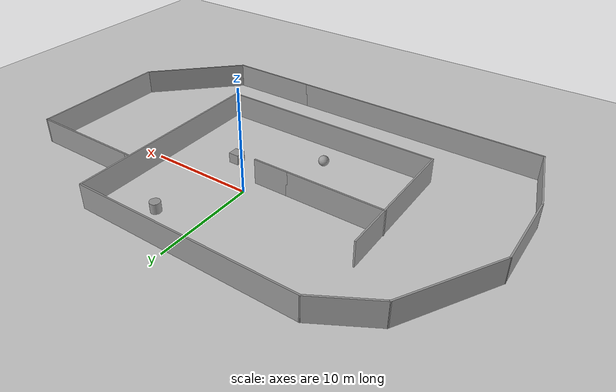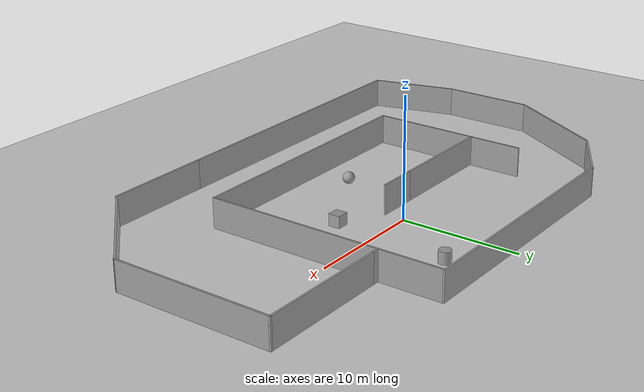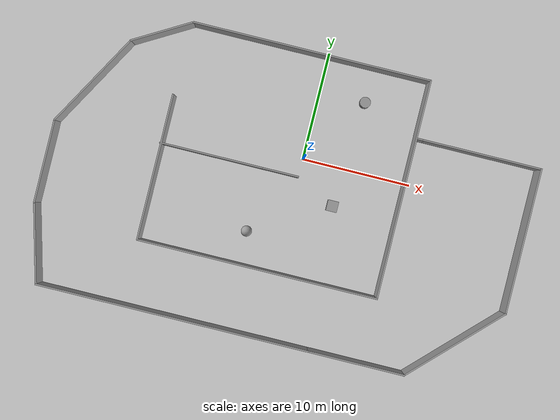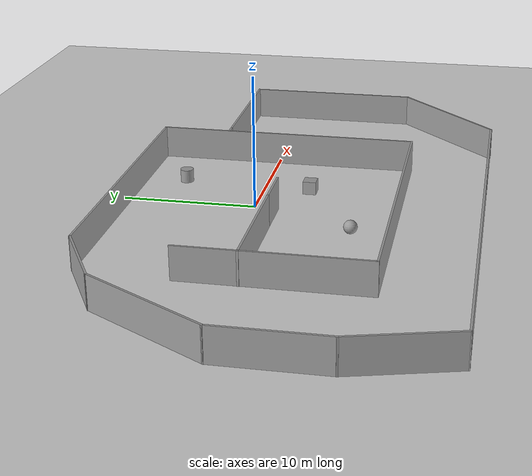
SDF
<sdf version="1.7">
 <world name="default">
  <light name="sun" type="directional">
   <pose>0 0 10 0 -0 0</pose>
   <diffuse>0.8 0.8 0.8 1</diffuse>
   <specular>0.2 0.2 0.2 1</specular>
   <attenuation>
    <range>1000</range>
    <constant>0.9</constant>
    <linear>0.01</linear>
    <quadratic>0.001</quadratic>
   </attenuation>
   <direction>-0.5 0.1 -0.9</direction>
   <spot><inner_angle>0</inner_angle><outer_angle>0</outer_angle><falloff>0</falloff></spot>
  </light>
  <model name="ground_plane">
   <static>1</static>
   <link name="link">
    <collision name="collision">
     <geometry><plane><normal>0 0 1</normal><size>100 100</size></plane></geometry>
     <surface>
      <contact><collide_bitmask>65535</collide_bitmask></contact>
      <friction><ode><mu>100</mu><mu2>50</mu2></ode></friction>
     </surface>
    </collision>
    <visual name="visual">
     <cast_shadows>0</cast_shadows>
     <geometry><plane><normal>0 0 1</normal><size>100 100</size></plane></geometry>
     <material>
      <script><uri>file://media/materials/scripts/gazebo.material</uri><name>Gazebo/Grey</name></script>
     </material>
    </visual>
   </link>
  </model>
  <gravity>0 0 -9.8</gravity>
  <magnetic_field>6e-06 2.3e-05 -4.2e-05</magnetic_field>
  <atmosphere type="adiabatic"/>
  <physics type="ode">
   <max_step_size>0.001</max_step_size>
   <real_time_factor>1</real_time_factor>
   <real_time_update_rate>1000</real_time_update_rate>
  </physics>
  <scene><ambient>0.4 0.4 0.4 1</ambient><background>0.7 0.7 0.7 1</background><shadows>1</shadows></scene>
  <spherical_coordinates>
   <surface_model>EARTH_WGS84</surface_model>
   <latitude_deg>0</latitude_deg>
   <longitude_deg>0</longitude_deg>
   <elevation>0</elevation>
   <heading_deg>0</heading_deg>
  </spherical_coordinates>
  <model name="dd_world">
   <pose>-0.797271 -3.61014 0 0 -0 0</pose>
   <link name="Wall_19">
    <collision name="Wall_19_Collision">
     <geometry><box><size>13.5 0.15 2.5</size></box></geometry>
     <pose>0 0 1.25 0 -0 0</pose>
    </collision>
    <visual name="Wall_19_Visual">
     <pose>0 0 1.25 0 -0 0</pose>
     <geometry><box><size>13.5 0.15 2.5</size></box></geometry>
     <material>
      <script><uri>file://media/materials/scripts/gazebo.material</uri><name>Gazebo/Grey</name></script>
      <ambient>1 1 1 1</ambient>
     </material>
     <meta><layer>0</layer></meta>
    </visual>
    <pose>-11.9344 -0.34574 0 0 -0 -1.5708</pose>
   </link>
   <link name="Wall_20">
    <collision name="Wall_20_Collision">
     <geometry><box><size>22.25 0.15 2.5</size></box></geometry>
     <pose>0 0 1.25 0 -0 0</pose>
    </collision>
    <visual name="Wall_20_Visual">
     <pose>0 0 1.25 0 -0 0</pose>
     <geometry><box><size>22.25 0.15 2.5</size></box></geometry>
     <material>
      <script><uri>file://media/materials/scripts/gazebo.material</uri><name>Gazebo/Grey</name></script>
      <ambient>1 1 1 1</ambient>
     </material>
     <meta><layer>0</layer></meta>
    </visual>
    <pose>-0.884384 -7.02074 0 0 -0 0</pose>
   </link>
   <link name="Wall_21">
    <collision name="Wall_21_Collision">
     <geometry><box><size>20.25 0.15 2.5</size></box></geometry>
     <pose>0 0 1.25 0 -0 0</pose>
    </collision>
    <visual name="Wall_21_Visual">
     <pose>0 0 1.25 0 -0 0</pose>
     <geometry><box><size>20.25 0.15 2.5</size></box></geometry>
     <material>
      <script><uri>file://media/materials/scripts/gazebo.material</uri><name>Gazebo/Grey</name></script>
      <ambient>1 1 1 1</ambient>
     </material>
     <meta><layer>0</layer></meta>
    </visual>
    <pose>10.1656 3.02926 0 0 -0 1.5708</pose>
   </link>
   <link name="Wall_22">
    <collision name="Wall_22_Collision">
     <geometry><box><size>22 0.15 2.5</size></box></geometry>
     <pose>0 0 1.25 0 -0 0</pose>
    </collision>
    <visual name="Wall_22_Visual">
     <pose>0 0 1.25 0 -0 0</pose>
     <geometry><box><size>22 0.15 2.5</size></box></geometry>
     <material>
      <script><uri>file://media/materials/scripts/gazebo.material</uri><name>Gazebo/Grey</name></script>
      <ambient>1 1 1 1</ambient>
     </material>
     <meta><layer>0</layer></meta>
    </visual>
    <pose>-0.759384 13.0793 0 0 -0 3.14159</pose>
   </link>
   <link name="Wall_23">
    <collision name="Wall_23_Collision">
     <geometry><box><size>6 0.15 2.5</size></box></geometry>
     <pose>0 0 1.25 0 -0 0</pose>
    </collision>
    <visual name="Wall_23_Visual">
     <pose>0 0 1.25 0 -0 0</pose>
     <geometry><box><size>6 0.15 2.5</size></box></geometry>
     <material>
      <script><uri>file://media/materials/scripts/gazebo.material</uri><name>Gazebo/Grey</name></script>
      <ambient>1 1 1 1</ambient>
     </material>
     <meta><layer>0</layer></meta>
    </visual>
    <pose>-14.2175 11.6168 0 0 -0 -2.61799</pose>
   </link>
   <link name="Wall_24">
    <collision name="Wall_24_Collision">
     <geometry><box><size>10 0.15 2.5</size></box></geometry>
     <pose>0 0 1.25 0 -0 0</pose>
    </collision>
    <visual name="Wall_24_Visual">
     <pose>0 0 1.25 0 -0 0</pose>
     <geometry><box><size>10 0.15 2.5</size></box></geometry>
     <material>
      <script><uri>file://media/materials/scripts/gazebo.material</uri><name>Gazebo/Grey</name></script>
      <ambient>1 1 1 1</ambient>
     </material>
     <meta><layer>0</layer></meta>
    </visual>
    <pose>-19.2131 5.88908 0 0 -0 -2.0944</pose>
   </link>
   <link name="Wall_25">
    <collision name="Wall_25_Collision">
     <geometry><box><size>7.75 0.15 2.5</size></box></geometry>
     <pose>0 0 1.25 0 -0 0</pose>
    </collision>
    <visual name="Wall_25_Visual">
     <pose>0 0 1.25 0 -0 0</pose>
     <geometry><box><size>7.75 0.15 2.5</size></box></geometry>
     <material>
      <script><uri>file://media/materials/scripts/gazebo.material</uri><name>Gazebo/Grey</name></script>
      <ambient>1 1 1 1</ambient>
     </material>
     <meta><layer>0</layer></meta>
    </visual>
    <pose>-21.6756 -2.17609 0 0 -0 -1.5708</pose>
   </link>
   <link name="Wall_26">
    <collision name="Wall_26_Collision">
     <geometry><box><size>7.5 0.15 2.5</size></box></geometry>
     <pose>0 0 1.25 0 -0 0</pose>
    </collision>
    <visual name="Wall_26_Visual">
     <pose>0 0 1.25 0 -0 0</pose>
     <geometry><box><size>7.5 0.15 2.5</size></box></geometry>
     <material>
      <script><uri>file://media/materials/scripts/gazebo.material</uri><name>Gazebo/Grey</name></script>
      <ambient>1 1 1 1</ambient>
     </material>
     <meta><layer>0</layer></meta>
    </visual>
    <pose>-20.7245 -9.52587 0 0 -0 -1.309</pose>
   </link>
   <link name="Wall_27">
    <collision name="Wall_27_Collision">
     <geometry><box><size>25.25 0.15 2.5</size></box></geometry>
     <pose>0 0 1.25 0 -0 0</pose>
    </collision>
    <visual name="Wall_27_Visual">
     <pose>0 0 1.25 0 -0 0</pose>
     <geometry><box><size>25.25 0.15 2.5</size></box></geometry>
     <material>
      <script><uri>file://media/materials/scripts/gazebo.material</uri><name>Gazebo/Grey</name></script>
      <ambient>1 1 1 1</ambient>
     </material>
     <meta><layer>0</layer></meta>
    </visual>
    <pose>-7.22331 -13.0756 0 0 -0 0</pose>
   </link>
   <link name="Wall_28">
    <collision name="Wall_28_Collision">
     <geometry><box><size>9 0.15 2.5</size></box></geometry>
     <pose>0 0 1.25 0 -0 0</pose>
    </collision>
    <visual name="Wall_28_Visual">
     <pose>0 0 1.25 0 -0 0</pose>
     <geometry><box><size>9 0.15 2.5</size></box></geometry>
     <material>
      <script><uri>file://media/materials/scripts/gazebo.material</uri><name>Gazebo/Grey</name></script>
      <ambient>1 1 1 1</ambient>
     </material>
     <meta><layer>0</layer></meta>
    </visual>
    <pose>9.75169 -13.0756 0 0 -0 0</pose>
   </link>
   <link name="Wall_29">
    <collision name="Wall_29_Collision">
     <geometry><box><size>10.75 0.15 2.5</size></box></geometry>
     <pose>0 0 1.25 0 -0 0</pose>
    </collision>
    <visual name="Wall_29_Visual">
     <pose>0 0 1.25 0 -0 0</pose>
     <geometry><box><size>10.75 0.15 2.5</size></box></geometry>
     <material>
      <script><uri>file://media/materials/scripts/gazebo.material</uri><name>Gazebo/Grey</name></script>
      <ambient>1 1 1 1</ambient>
     </material>
     <meta><layer>0</layer></meta>
    </visual>
    <pose>17.9244 -9.32798 0 0 -0 0.785398</pose>
   </link>
   <link name="Wall_30">
    <collision name="Wall_30_Collision">
     <geometry><box><size>13.5 0.15 2.5</size></box></geometry>
     <pose>0 0 1.25 0 -0 0</pose>
    </collision>
    <visual name="Wall_30_Visual">
     <pose>0 0 1.25 0 -0 0</pose>
     <geometry><box><size>13.5 0.15 2.5</size></box></geometry>
     <material>
      <script><uri>file://media/materials/scripts/gazebo.material</uri><name>Gazebo/Grey</name></script>
      <ambient>1 1 1 1</ambient>
     </material>
     <meta><layer>0</layer></meta>
    </visual>
    <pose>21.672 1.09469 0 0 -0 1.5708</pose>
   </link>
   <link name="Wall_31">
    <collision name="Wall_31_Collision">
     <geometry><box><size>11 0.15 2.5</size></box></geometry>
     <pose>0 0 1.25 0 -0 0</pose>
    </collision>
    <visual name="Wall_31_Visual">
     <pose>0 0 1.25 0 -0 0</pose>
     <geometry><box><size>11 0.15 2.5</size></box></geometry>
     <material>
      <script><uri>file://media/materials/scripts/gazebo.material</uri><name>Gazebo/Grey</name></script>
      <ambient>1 1 1 1</ambient>
     </material>
     <meta><layer>0</layer></meta>
    </visual>
    <pose>16.247 7.76969 0 0 -0 3.14159</pose>
   </link>
   <link name="Wall_32">
    <collision name="Wall_32_Collision">
     <geometry><box><size>0.75 0.15 2.5</size></box></geometry>
     <pose>0 0 1.25 0 -0 0</pose>
    </collision>
    <visual name="Wall_32_Visual">
     <pose>0 0 1.25 0 -0 0</pose>
     <geometry><box><size>0.75 0.15 2.5</size></box></geometry>
     <material>
      <script><uri>file://media/materials/scripts/gazebo.material</uri><name>Gazebo/Grey</name></script>
      <ambient>1 1 1 1</ambient>
     </material>
     <meta><layer>0</layer></meta>
    </visual>
    <pose>10.522 7.76969 0 0 -0 3.14159</pose>
   </link>
   <link name="Wall_34">
    <collision name="Wall_34_Collision">
     <geometry><box><size>9.5 0.15 2.5</size></box></geometry>
     <pose>0 0 1.25 0 -0 0</pose>
    </collision>
    <visual name="Wall_34_Visual">
     <pose>0 0 1.25 0 -0 0</pose>
     <geometry><box><size>9.5 0.15 2.5</size></box></geometry>
     <material>
      <script><uri>file://media/materials/scripts/gazebo.material</uri><name>Gazebo/Grey</name></script>
      <ambient>1 1 1 1</ambient>
     </material>
     <meta><layer>0</layer></meta>
    </visual>
    <pose>-7.3285 1.89463 0 0 -0 0</pose>
   </link>
   <link name="Wall_35">
    <collision name="Wall_35_Collision">
     <geometry><box><size>3.5 0.15 2.5</size></box></geometry>
     <pose>0 0 1.25 0 -0 0</pose>
    </collision>
    <visual name="Wall_35_Visual">
     <pose>0 0 1.25 0 -0 0</pose>
     <geometry><box><size>3.5 0.15 2.5</size></box></geometry>
     <material>
      <script><uri>file://media/materials/scripts/gazebo.material</uri><name>Gazebo/Grey</name></script>
      <ambient>1 1 1 1</ambient>
     </material>
     <meta><layer>0</layer></meta>
    </visual>
    <pose>-0.978498 1.89463 0 0 -0 0</pose>
   </link>
   <static>1</static>
  </model>
  <model name="unit_cylinder">
   <pose>4.2236 6.33976 0.499997 3e-06 4e-06 -0</pose>
   <link name="link">
    <inertial>
     <mass>1</mass>
     <inertia><ixx>0.145833</ixx><ixy>0</ixy><ixz>0</ixz><iyy>0.145833</iyy><iyz>0</iyz><izz>0.125</izz></inertia>
    </inertial>
    <collision name="collision">
     <geometry><cylinder><radius>0.5</radius><length>1</length></cylinder></geometry>
    </collision>
    <visual name="visual">
     <geometry><cylinder><radius>0.5</radius><length>1</length></cylinder></geometry>
     <material>
      <script><name>Gazebo/Grey</name><uri>file://media/materials/scripts/gazebo.material</uri></script>
     </material>
    </visual>
   </link>
  </model>
  <model name="unit_box">
   <pose>3.57811 -3.51792 0.499995 -1e-05 -0 0</pose>
   <link name="link">
    <inertial>
     <mass>1</mass>
     <inertia>
      <ixx>0.166667</ixx>
      <ixy>0</ixy>
      <ixz>0</ixz>
      <iyy>0.166667</iyy>
      <iyz>0</iyz>
      <izz>0.166667</izz>
     </inertia>
    </inertial>
    <collision name="collision"><geometry><box><size>1 1 1</size></box></geometry></collision>
    <visual name="visual">
     <geometry><box><size>1 1 1</size></box></geometry>
     <material>
      <script><name>Gazebo/Grey</name><uri>file://media/materials/scripts/gazebo.material</uri></script>
     </material>
    </visual>
   </link>
  </model>
  <model name="unit_sphere">
   <pose>-3.46151 -7.60518 0.5 0 -0 0</pose>
   <link name="link">
    <inertial>
     <mass>1</mass>
     <inertia><ixx>0.1</ixx><ixy>0</ixy><ixz>0</ixz><iyy>0.1</iyy><iyz>0</iyz><izz>0.1</izz></inertia>
    </inertial>
    <collision name="collision"><geometry><sphere><radius>0.5</radius></sphere></geometry></collision>
    <visual name="visual">
     <geometry><sphere><radius>0.5</radius></sphere></geometry>
     <material>
      <script><name>Gazebo/Grey</name><uri>file://media/materials/scripts/gazebo.material</uri></script>
     </material>
    </visual>
   </link>
  </model>
 </world>
</sdf>
